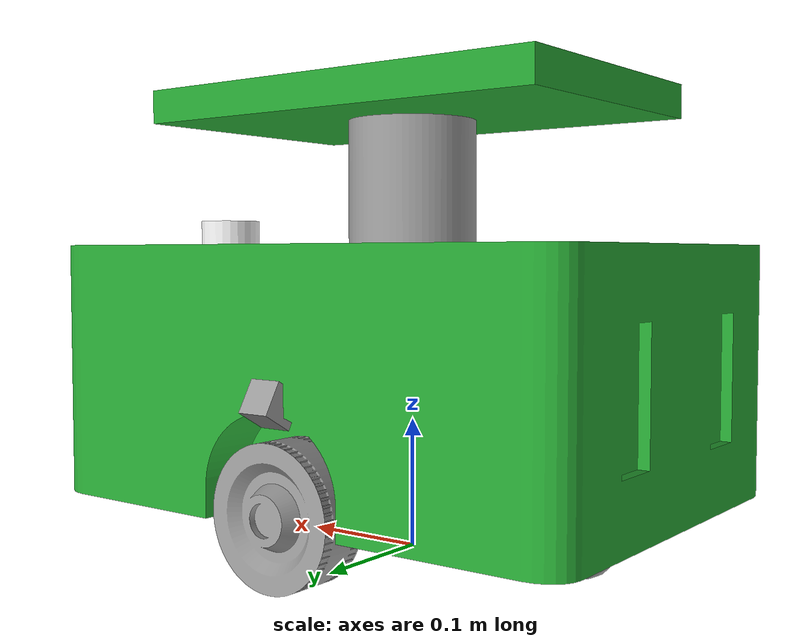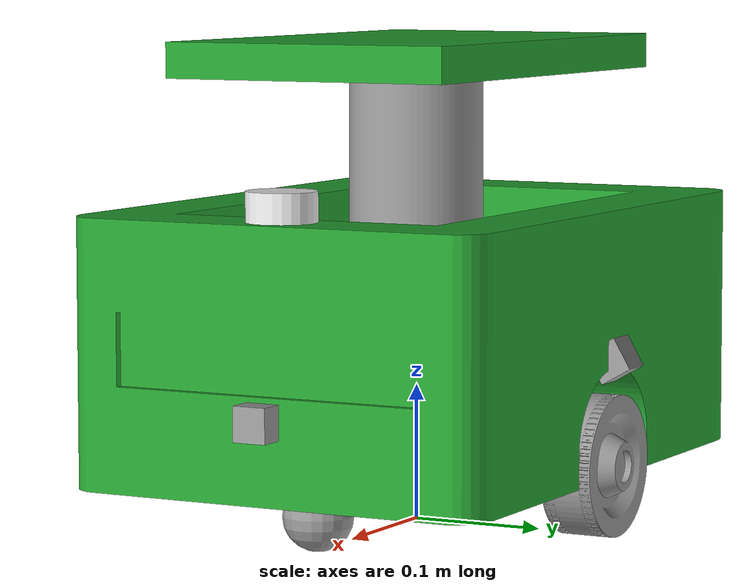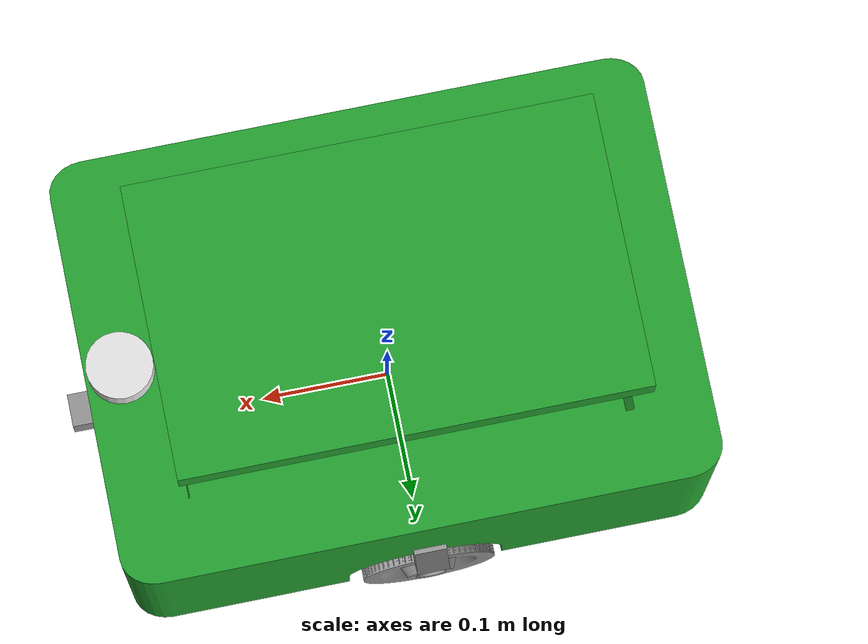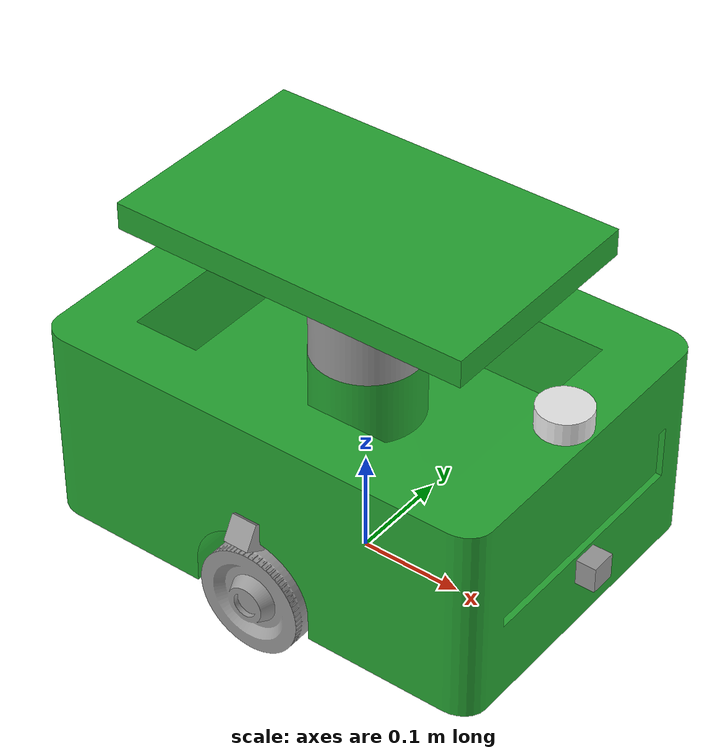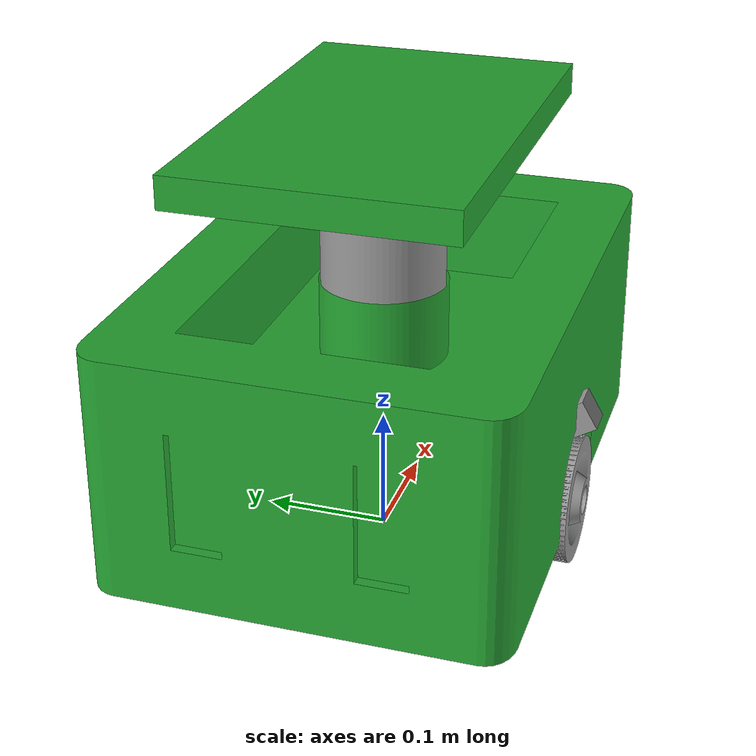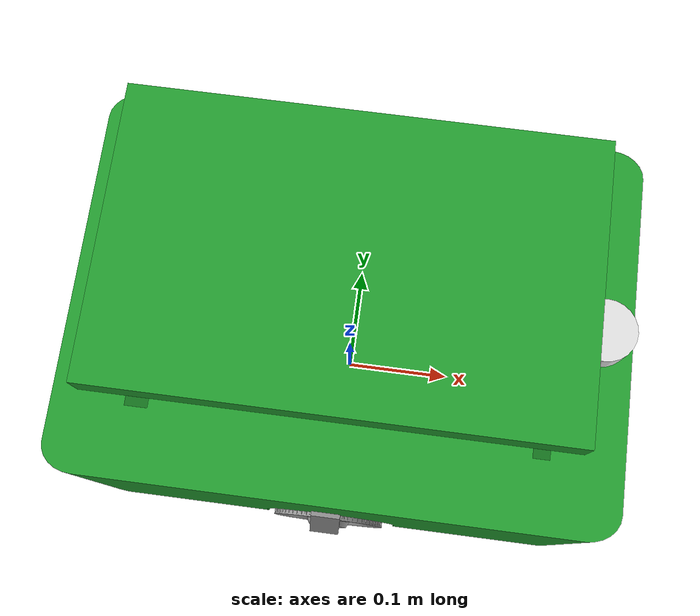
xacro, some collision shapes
<?xml version="1.0"?>
<robot xmlns:xacro="http://ros.org/wiki/xacro" >

<!-- body value -->
<xacro:property name="base_length" value="0.45" />
<xacro:property name="base_width" value="0.32" />
<xacro:property name="base_hight" value="0.19" />

<!-- Wheel values -->
<xacro:property name="wheel_r" value="0.051" />
<xacro:property name="wheel_length" value="0.046" />
<xacro:property name="wheel_margin" value="0.015" />

<!-- Lidar values  -->
<xacro:property name="lidar_r" value="0.025" />
<xacro:property name="lidar_l" value="0.0215" />

<xacro:property name="r200_cam_rgb_px" value="0.005"/>
<xacro:property name="r200_cam_rgb_py" value="0"/>
<xacro:property name="r200_cam_rgb_pz" value="0.013"/>
<xacro:property name="r200_cam_depth_offset" value="0.01"/>

<link name="base_footprint">
</link>

<link name="base_link">
  <visual>
    <geometry>
      <mesh filename="package://turtlebot5/meshes/body.stl"/>
    </geometry>
      <origin xyz="0.0 0.0 ${base_hight/2.0}" rpy="0.0 0.0 0.0"/>
      <material name="green"/>
  </visual>
  <collision>
    <geometry>
       <box size="${base_length} ${base_width} ${base_hight}"/>
    </geometry>
      <origin xyz="0.0 0.0 ${base_hight/2.0}" rpy="0.0 0.0 0.0"/>
  </collision>

  <xacro:box_inertia m="5.0" l="${2*base_length}" w="${2*base_width}" h="${2*base_hight}" xyz="0.0 0.0 ${base_hight/2.0}" rpy="0.0 0.0 0.0"/>
</link>

<link name="platform_lift_link">
  <visual>
    <origin xyz="0.0 0.0 0.0" rpy="0 0.0 0.0"/>
    <geometry>
        <mesh filename="package://turtlebot5/meshes/inner.stl"/>
    </geometry>
    <material name="grey"/>
  </visual>
  <xacro:cylinder_inertia m="1.0" r="${2*wheel_r}" h="${2*wheel_length}" xyz="0.0 0.0 ${0.18/2}" rpy="0.0 0.0 0.0" />
</link>

<link name="platform_link">
  <visual>
    <geometry>
        <mesh filename="package://turtlebot5/meshes/plateform.stl"/>
    </geometry>
      <origin xyz="0.0 0.0 0" rpy="0.0 0.0 0.0"/>
      <material name="green"/>
  </visual>
  <collision>
    <geometry>
      <box size="0.35 0.22 0.026"/>
    </geometry>
      <origin xyz="0.0 0.0 0" rpy="0.0 0.0 0.0"/>
  </collision>

  <xacro:box_inertia m="5.0" l="0.35" w="0.22" h="0.026" xyz="0.0 0.0 0" rpy="0.0 0.0 0.0"/>
</link>

<link name="base_scan">
    <visual name="">
        <origin xyz="0.0 0.0 0.0" rpy="0.0 0.0 0.0"/>
        <geometry>
            <mesh filename="package://turtlebot5/meshes/lds.stl" scale="0.0005 0.0005 0.0005"/>
        </geometry>
        <material name="white" />
    </visual>
    <collision>
          <origin xyz="0.0 0.0 0.0" rpy="0.0 0.0 0.0"/>
        <geometry>
            <cylinder radius="${lidar_r}" length="${lidar_l}"/>
        </geometry>
    </collision>
</link>

<link name="wheel_left_link">
  <visual>
    <origin xyz="0.0 0.0 0.0" rpy="${pi / 2.0} 0.0 0.0"/>
    <geometry>
        <mesh filename="package://turtlebot5/meshes/wheelR.stl"/>
    </geometry>
    <material name="grey"/>
  </visual>
  <collision>
      <origin xyz="0.0 0.0 0.0" rpy="${pi / 2.0} 0.0 0.0"/>
    <geometry>
        <cylinder radius="${wheel_r}" length="${wheel_length}"/>
    </geometry>
  </collision>
  <xacro:cylinder_inertia m="1.0" r="${2*wheel_r}" h="${2*wheel_length}" xyz="0.0 0.0 0.0" rpy="${pi / 2.0} 0.0 0.0" />
</link>

<link name="wheel_right_link">
  <visual>
      <origin xyz="0.0 0.0 0.0" rpy="${pi / 2.0} 0.0 0.0"/>
      <geometry>
          <mesh filename="package://turtlebot5/meshes/wheelL.stl"/>
      </geometry>
      <material name="grey"/>
  </visual>
  <collision>
      <origin xyz="0.0 0.0 0.0" rpy="${pi / 2.0} 0.0 0.0"/>
      <geometry>
          <cylinder radius="${wheel_r}" length="${wheel_length}"/>
      </geometry>
  </collision>
  <xacro:cylinder_inertia m="1.0" r="${2*wheel_r}" h="${2*wheel_length}" xyz="0.0 0.0 0.0" rpy="${pi / 2.0} 0.0 0.0" />
</link>

<link name="caster_link_f">
  <visual>
      <origin xyz="0.0 0.0 0.0" rpy="0.0 0.0 0.0"/>
      <geometry>
          <sphere radius="${wheel_r / 2.0}"/>
      </geometry>
      <material name="grey"/>
  </visual>
  <collision>
      <origin xyz="0.0 0.0 0.0" rpy="0.0 0.0 0.0"/>
      <geometry>
          <sphere radius="${wheel_r / 2.0}"/>
      </geometry>
  </collision>
  <xacro:sphere_inertia m="0.5" r="${2*wheel_r / 2.0}" xyz="0.0 0.0 0.0" rpy="0.0 0.0 0.0" />
</link>

<link name="caster_link_b">
  <visual>
      <origin xyz="0.0 0.0 0.0" rpy="0.0 0.0 0.0"/>
      <geometry>
          <sphere radius="${wheel_r / 2.0}"/>
      </geometry>
      <material name="grey"/>
  </visual>
  <collision>
      <origin xyz="0.0 0.0 0.0" rpy="0.0 0.0 0.0"/>
      <geometry>
          <sphere radius="${wheel_r / 2.0}"/>
      </geometry>
  </collision>
  <xacro:sphere_inertia m="0.5" r="${2*wheel_r / 2.0}" xyz="0.0 0.0 0.0" rpy="0.0 0.0 0.0" />
</link>

<link name="camera_link">
  <visual>
   <origin xyz="0.0 0.0 0.0" rpy="1.57 0 1.57"/>
    <geometry>
      <box size="0.025 0.025 0.025"/>
    </geometry>
    <material name="grey"/>
  </visual>
</link>
<link name="camera_link_2">
    <collision>
        <origin xyz="0 0 0" rpy="0 0 0"/>
        <geometry>
            <box size="0.025 0.025 0.025"/>
        </geometry>
    </collision>
</link>
<link name="camera_left">
  <visual>
   <origin xyz="0.0 0.0 0.0" rpy="1.57 0 1.57"/>
    <geometry>
      <box size="0.025 0.025 0.025"/>
    </geometry>
    <material name="grey"/>
  </visual>
</link>
<link name="camera_right">
  <visual>
   <origin xyz="0.0 0.0 0.0" rpy="1.57 0 1.57"/>
    <geometry>
      <box size="0.025 0.025 0.025"/>
    </geometry>
    <material name="grey"/>
  </visual>
</link>
<!-- #####################################################   JOINTS   ###################################################### -->

<joint name="base_joint" type="fixed">
    <origin xyz="0.0 0.0 ${wheel_r}" rpy="0.0 0.0 0.0"/>
    <parent link="base_footprint"/>
    <child link="base_link"/>
</joint>

<joint name="platform_joint" type="fixed">
    <origin xyz="0.0 0.0 ${base_hight}" rpy="0.0 0.0 0.0"/>
    <parent link="platform_lift_link"/>
    <child link="platform_link"/>
</joint>

<joint name="platform_lift_joint" type="prismatic">
    <origin xyz="0.0005 0.0 0.0" rpy="0.0 0.0 0.0"/>
    <parent link="base_link"/>
    <child link="platform_lift_link"/>
    <axis xyz="0 0 1"/> <!-- Movement along the Z-axis -->
    <limit lower="0.04" upper="${(base_hight * 0.87)}" effort="2500" velocity="1.0"/> <!-- Motion range and limits -->
</joint>

<joint name="base_lidar_joint" type="fixed">
    <parent link="base_link"/>
    <child link="base_scan"/>
    <origin xyz="${(base_length / 2)- lidar_r} 0.0 ${(base_hight + lidar_l / 2) - 0.005}" rpy="0.0 0.0 0.0"/>
</joint>

<joint name="wheel_left_joint" type="continuous">
    <parent link="base_link"/>
    <child link="wheel_left_link"/>
    <origin xyz="0 ${(base_width - wheel_length + wheel_margin)/2.0} 0.0" rpy="0.0 0.0 0.0"/>
    <axis xyz="0 1 0.0"/>
</joint>

<joint name="wheel_right_joint" type="continuous">
    <parent link="base_link"/>
    <child link="wheel_right_link"/>
    <origin xyz=" 0 ${-(base_width - wheel_length + wheel_margin)/2.0} 0.0" rpy="0.0 0.0 0.0"/>
    <axis xyz="0 1 0.0"/>
</joint>

<joint name="caster_joint_f" type="fixed">
    <origin xyz="${base_length/3.0} 0.0 ${-(wheel_r / 2.0)}" rpy="0.0 0.0 0.0"/>
    <parent link="base_link"/>
    <child link="caster_link_f"/>
</joint>

<joint name="caster_joint_b" type="fixed">
    <origin xyz="${-base_length/3.0} 0.0 ${-(wheel_r / 2.0)}" rpy="0.0 0.0 0.0"/>
    <parent link="base_link"/>
    <child link="caster_link_b"/>
</joint>

<joint name="camera_joint" type="fixed">
  <parent link="base_link"/>
  <child link="camera_link"/>
  <origin xyz="${(base_length/2) + 0.009} 0 ${0.094 + 0.05209 - (base_hight/2.0)}" rpy="0 0 0"/>
</joint>

<joint name="camera_rgb_joint" type="fixed">
  <origin xyz="0 0 ${r200_cam_rgb_pz}" rpy="0 1.05 0"/>
  <parent link="camera_link"/>
  <child link="camera_rgb_frame"/>
</joint>
<link name="camera_rgb_frame"/>
<joint name="camera_rgb_optical_joint" type="fixed">
  <origin xyz="0 0 0" rpy="-1.57 0 -1.57"/>
  <parent link="camera_rgb_frame"/>
  <child link="camera_rgb_optical_frame"/>
</joint>
<link name="camera_rgb_optical_frame"/>

<joint name="camera_depth_joint" type="fixed">
  <origin xyz="${r200_cam_rgb_px} ${r200_cam_rgb_py + r200_cam_depth_offset} ${r200_cam_rgb_pz}" rpy="0 0 0"/>
  <parent link="camera_link"/>
  <child link="camera_depth_frame"/>
</joint>
<link name="camera_depth_frame"/>

<joint name="camera_depth_optical_joint" type="fixed">
  <origin xyz="0 0 0" rpy="-1.57 0 -1.57"/>
  <parent link="camera_depth_frame"/>
  <child link="camera_depth_optical_frame"/>
</joint>
<link name="camera_depth_optical_frame"/>

<joint name="camera_joint_2" type="fixed">
  <parent link="base_link"/>
  <child link="camera_link_2"/>
  <origin xyz="${(base_length/2) + 0.09} ${r200_cam_rgb_py + (0.098/2)} 0.098" rpy="0 0.5 0"/> <!-- Adjusted rpy to face the ground -->
</joint>

<joint name="camera_left_joint" type="fixed">
  <parent link="base_link"/>
  <child link="camera_left"/>
  <origin xyz="0 ${(base_width)/2.0} ${0.12 + 0.05209 - (base_hight/2.0)}" rpy="0 1.05 1.5708"/> <!-- Adjusted rpy to face the ground -->
</joint>

<joint name="camera_right_joint" type="fixed">
  <parent link="base_link"/>
  <child link="camera_right"/>
  <origin xyz="0 ${-(base_width)/2.0} ${0.12 + 0.05209 - (base_hight/2.0)}" rpy="0 1.05 -1.5708"/> <!-- Adjusted rpy to face the ground -->
</joint>
</robot>
